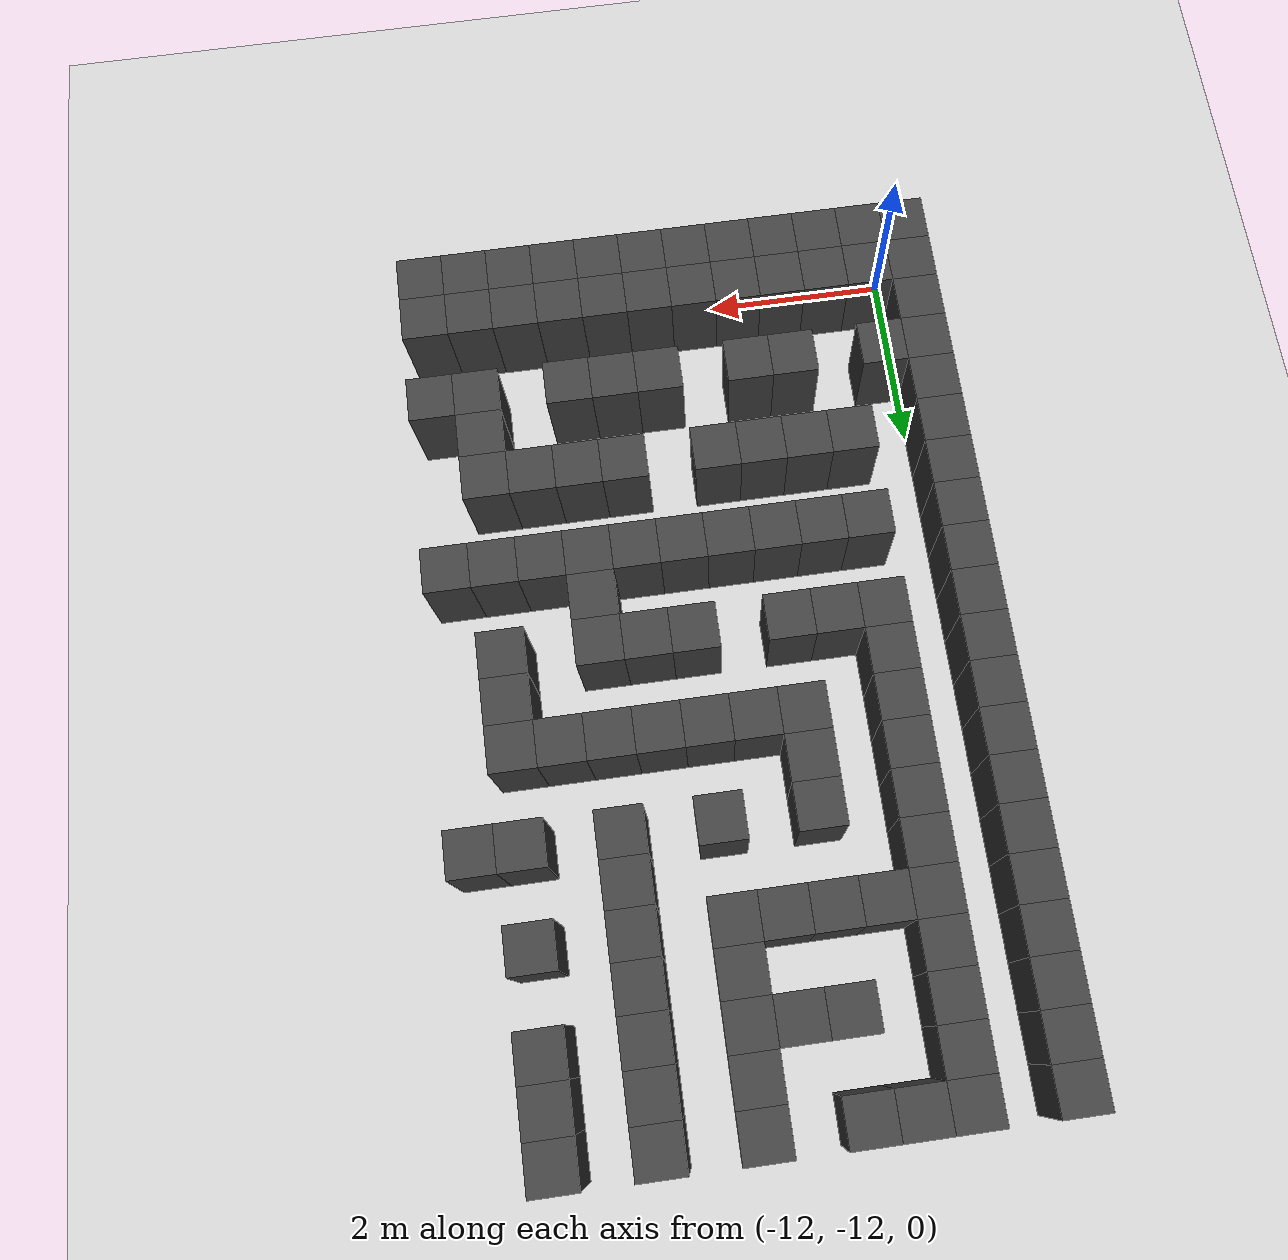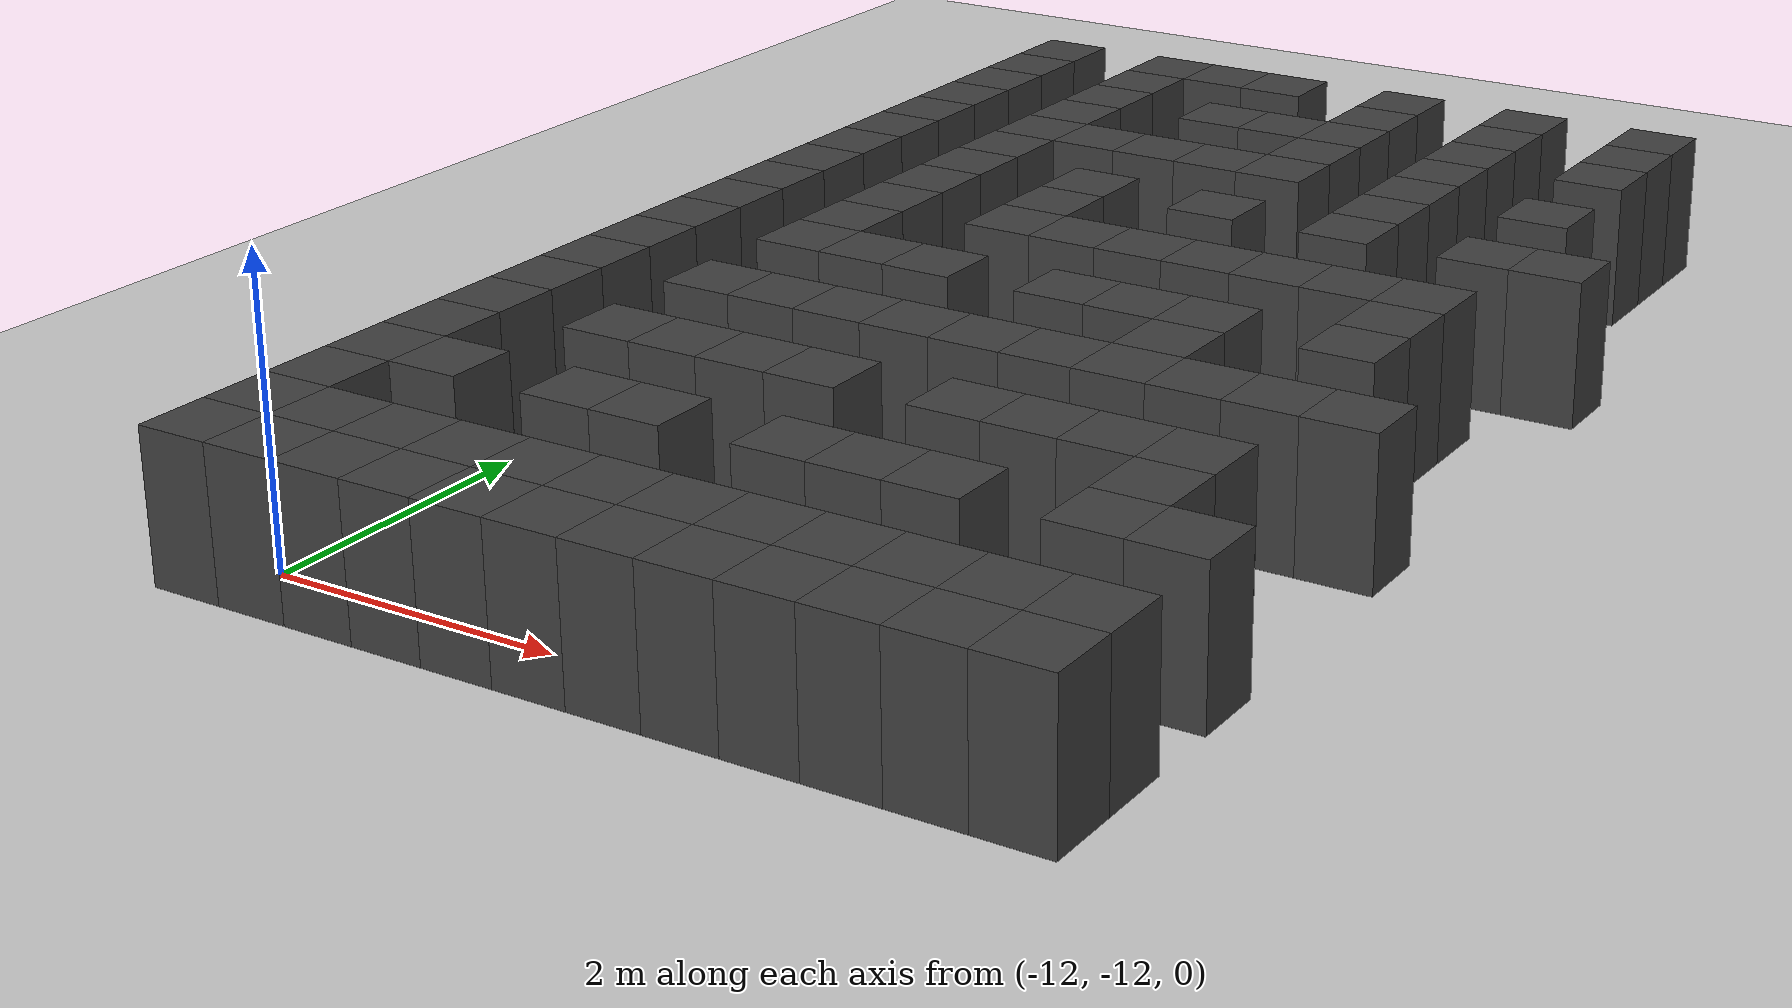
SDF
<sdf version="1.7">
 <world name="map_16271">
  <model name="ground_plane">
   <static>true</static>
   <link name="link">
    <collision name="collision">
     <geometry><plane><normal>0 0 1</normal><size>200 200</size></plane></geometry>
    </collision>
    <visual name="visual">
     <geometry><plane><normal>0 0 1</normal><size>200 200</size></plane></geometry>
     <material><ambient>0.8 0.8 0.8 1</ambient><diffuse>0.8 0.8 0.8 1</diffuse></material>
    </visual>
   </link>
  </model>
  <model name="maze_environment">
   <static>true</static>
   <link name="wall_720">
    <pose>-12.250 -2.750 0.500 0 0 0</pose>
    <collision name="col"><geometry><box><size>0.5 0.5 1.0</size></box></geometry></collision>
    <visual name="vis">
     <geometry><box><size>0.5 0.5 1.0</size></box></geometry>
     <material><ambient>0.15 0.15 0.15 1</ambient><diffuse>0.25 0.25 0.25 1</diffuse></material>
    </visual>
   </link>
   <link name="wall_721">
    <pose>-11.250 -2.750 0.500 0 0 0</pose>
    <collision name="col"><geometry><box><size>0.5 0.5 1.0</size></box></geometry></collision>
    <visual name="vis">
     <geometry><box><size>0.5 0.5 1.0</size></box></geometry>
     <material><ambient>0.15 0.15 0.15 1</ambient><diffuse>0.25 0.25 0.25 1</diffuse></material>
    </visual>
   </link>
   <link name="wall_722">
    <pose>-10.750 -2.750 0.500 0 0 0</pose>
    <collision name="col"><geometry><box><size>0.5 0.5 1.0</size></box></geometry></collision>
    <visual name="vis">
     <geometry><box><size>0.5 0.5 1.0</size></box></geometry>
     <material><ambient>0.15 0.15 0.15 1</ambient><diffuse>0.25 0.25 0.25 1</diffuse></material>
    </visual>
   </link>
   <link name="wall_723">
    <pose>-10.250 -2.750 0.500 0 0 0</pose>
    <collision name="col"><geometry><box><size>0.5 0.5 1.0</size></box></geometry></collision>
    <visual name="vis">
     <geometry><box><size>0.5 0.5 1.0</size></box></geometry>
     <material><ambient>0.15 0.15 0.15 1</ambient><diffuse>0.25 0.25 0.25 1</diffuse></material>
    </visual>
   </link>
   <link name="wall_724">
    <pose>-9.250 -2.750 0.500 0 0 0</pose>
    <collision name="col"><geometry><box><size>0.5 0.5 1.0</size></box></geometry></collision>
    <visual name="vis">
     <geometry><box><size>0.5 0.5 1.0</size></box></geometry>
     <material><ambient>0.15 0.15 0.15 1</ambient><diffuse>0.25 0.25 0.25 1</diffuse></material>
    </visual>
   </link>
   <link name="wall_725">
    <pose>-8.250 -2.750 0.500 0 0 0</pose>
    <collision name="col"><geometry><box><size>0.5 0.5 1.0</size></box></geometry></collision>
    <visual name="vis">
     <geometry><box><size>0.5 0.5 1.0</size></box></geometry>
     <material><ambient>0.15 0.15 0.15 1</ambient><diffuse>0.25 0.25 0.25 1</diffuse></material>
    </visual>
   </link>
   <link name="wall_726">
    <pose>-7.250 -2.750 0.500 0 0 0</pose>
    <collision name="col"><geometry><box><size>0.5 0.5 1.0</size></box></geometry></collision>
    <visual name="vis">
     <geometry><box><size>0.5 0.5 1.0</size></box></geometry>
     <material><ambient>0.15 0.15 0.15 1</ambient><diffuse>0.25 0.25 0.25 1</diffuse></material>
    </visual>
   </link>
   <link name="wall_752">
    <pose>-12.250 -3.250 0.500 0 0 0</pose>
    <collision name="col"><geometry><box><size>0.5 0.5 1.0</size></box></geometry></collision>
    <visual name="vis">
     <geometry><box><size>0.5 0.5 1.0</size></box></geometry>
     <material><ambient>0.15 0.15 0.15 1</ambient><diffuse>0.25 0.25 0.25 1</diffuse></material>
    </visual>
   </link>
   <link name="wall_753">
    <pose>-11.250 -3.250 0.500 0 0 0</pose>
    <collision name="col"><geometry><box><size>0.5 0.5 1.0</size></box></geometry></collision>
    <visual name="vis">
     <geometry><box><size>0.5 0.5 1.0</size></box></geometry>
     <material><ambient>0.15 0.15 0.15 1</ambient><diffuse>0.25 0.25 0.25 1</diffuse></material>
    </visual>
   </link>
   <link name="wall_754">
    <pose>-9.250 -3.250 0.500 0 0 0</pose>
    <collision name="col"><geometry><box><size>0.5 0.5 1.0</size></box></geometry></collision>
    <visual name="vis">
     <geometry><box><size>0.5 0.5 1.0</size></box></geometry>
     <material><ambient>0.15 0.15 0.15 1</ambient><diffuse>0.25 0.25 0.25 1</diffuse></material>
    </visual>
   </link>
   <link name="wall_755">
    <pose>-8.250 -3.250 0.500 0 0 0</pose>
    <collision name="col"><geometry><box><size>0.5 0.5 1.0</size></box></geometry></collision>
    <visual name="vis">
     <geometry><box><size>0.5 0.5 1.0</size></box></geometry>
     <material><ambient>0.15 0.15 0.15 1</ambient><diffuse>0.25 0.25 0.25 1</diffuse></material>
    </visual>
   </link>
   <link name="wall_756">
    <pose>-7.250 -3.250 0.500 0 0 0</pose>
    <collision name="col"><geometry><box><size>0.5 0.5 1.0</size></box></geometry></collision>
    <visual name="vis">
     <geometry><box><size>0.5 0.5 1.0</size></box></geometry>
     <material><ambient>0.15 0.15 0.15 1</ambient><diffuse>0.25 0.25 0.25 1</diffuse></material>
    </visual>
   </link>
   <link name="wall_763">
    <pose>-12.250 -3.750 0.500 0 0 0</pose>
    <collision name="col"><geometry><box><size>0.5 0.5 1.0</size></box></geometry></collision>
    <visual name="vis">
     <geometry><box><size>0.5 0.5 1.0</size></box></geometry>
     <material><ambient>0.15 0.15 0.15 1</ambient><diffuse>0.25 0.25 0.25 1</diffuse></material>
    </visual>
   </link>
   <link name="wall_764">
    <pose>-11.250 -3.750 0.500 0 0 0</pose>
    <collision name="col"><geometry><box><size>0.5 0.5 1.0</size></box></geometry></collision>
    <visual name="vis">
     <geometry><box><size>0.5 0.5 1.0</size></box></geometry>
     <material><ambient>0.15 0.15 0.15 1</ambient><diffuse>0.25 0.25 0.25 1</diffuse></material>
    </visual>
   </link>
   <link name="wall_765">
    <pose>-10.250 -3.750 0.500 0 0 0</pose>
    <collision name="col"><geometry><box><size>0.5 0.5 1.0</size></box></geometry></collision>
    <visual name="vis">
     <geometry><box><size>0.5 0.5 1.0</size></box></geometry>
     <material><ambient>0.15 0.15 0.15 1</ambient><diffuse>0.25 0.25 0.25 1</diffuse></material>
    </visual>
   </link>
   <link name="wall_766">
    <pose>-9.750 -3.750 0.500 0 0 0</pose>
    <collision name="col"><geometry><box><size>0.5 0.5 1.0</size></box></geometry></collision>
    <visual name="vis">
     <geometry><box><size>0.5 0.5 1.0</size></box></geometry>
     <material><ambient>0.15 0.15 0.15 1</ambient><diffuse>0.25 0.25 0.25 1</diffuse></material>
    </visual>
   </link>
   <link name="wall_767">
    <pose>-9.250 -3.750 0.500 0 0 0</pose>
    <collision name="col"><geometry><box><size>0.5 0.5 1.0</size></box></geometry></collision>
    <visual name="vis">
     <geometry><box><size>0.5 0.5 1.0</size></box></geometry>
     <material><ambient>0.15 0.15 0.15 1</ambient><diffuse>0.25 0.25 0.25 1</diffuse></material>
    </visual>
   </link>
   <link name="wall_768">
    <pose>-8.250 -3.750 0.500 0 0 0</pose>
    <collision name="col"><geometry><box><size>0.5 0.5 1.0</size></box></geometry></collision>
    <visual name="vis">
     <geometry><box><size>0.5 0.5 1.0</size></box></geometry>
     <material><ambient>0.15 0.15 0.15 1</ambient><diffuse>0.25 0.25 0.25 1</diffuse></material>
    </visual>
   </link>
   <link name="wall_769">
    <pose>-7.250 -3.750 0.500 0 0 0</pose>
    <collision name="col"><geometry><box><size>0.5 0.5 1.0</size></box></geometry></collision>
    <visual name="vis">
     <geometry><box><size>0.5 0.5 1.0</size></box></geometry>
     <material><ambient>0.15 0.15 0.15 1</ambient><diffuse>0.25 0.25 0.25 1</diffuse></material>
    </visual>
   </link>
   <link name="wall_797">
    <pose>-12.250 -4.250 0.500 0 0 0</pose>
    <collision name="col"><geometry><box><size>0.5 0.5 1.0</size></box></geometry></collision>
    <visual name="vis">
     <geometry><box><size>0.5 0.5 1.0</size></box></geometry>
     <material><ambient>0.15 0.15 0.15 1</ambient><diffuse>0.25 0.25 0.25 1</diffuse></material>
    </visual>
   </link>
   <link name="wall_798">
    <pose>-11.250 -4.250 0.500 0 0 0</pose>
    <collision name="col"><geometry><box><size>0.5 0.5 1.0</size></box></geometry></collision>
    <visual name="vis">
     <geometry><box><size>0.5 0.5 1.0</size></box></geometry>
     <material><ambient>0.15 0.15 0.15 1</ambient><diffuse>0.25 0.25 0.25 1</diffuse></material>
    </visual>
   </link>
   <link name="wall_799">
    <pose>-9.250 -4.250 0.500 0 0 0</pose>
    <collision name="col"><geometry><box><size>0.5 0.5 1.0</size></box></geometry></collision>
    <visual name="vis">
     <geometry><box><size>0.5 0.5 1.0</size></box></geometry>
     <material><ambient>0.15 0.15 0.15 1</ambient><diffuse>0.25 0.25 0.25 1</diffuse></material>
    </visual>
   </link>
   <link name="wall_800">
    <pose>-8.250 -4.250 0.500 0 0 0</pose>
    <collision name="col"><geometry><box><size>0.5 0.5 1.0</size></box></geometry></collision>
    <visual name="vis">
     <geometry><box><size>0.5 0.5 1.0</size></box></geometry>
     <material><ambient>0.15 0.15 0.15 1</ambient><diffuse>0.25 0.25 0.25 1</diffuse></material>
    </visual>
   </link>
   <link name="wall_811">
    <pose>-12.250 -4.750 0.500 0 0 0</pose>
    <collision name="col"><geometry><box><size>0.5 0.5 1.0</size></box></geometry></collision>
    <visual name="vis">
     <geometry><box><size>0.5 0.5 1.0</size></box></geometry>
     <material><ambient>0.15 0.15 0.15 1</ambient><diffuse>0.25 0.25 0.25 1</diffuse></material>
    </visual>
   </link>
   <link name="wall_812">
    <pose>-11.250 -4.750 0.500 0 0 0</pose>
    <collision name="col"><geometry><box><size>0.5 0.5 1.0</size></box></geometry></collision>
    <visual name="vis">
     <geometry><box><size>0.5 0.5 1.0</size></box></geometry>
     <material><ambient>0.15 0.15 0.15 1</ambient><diffuse>0.25 0.25 0.25 1</diffuse></material>
    </visual>
   </link>
   <link name="wall_813">
    <pose>-10.750 -4.750 0.500 0 0 0</pose>
    <collision name="col"><geometry><box><size>0.5 0.5 1.0</size></box></geometry></collision>
    <visual name="vis">
     <geometry><box><size>0.5 0.5 1.0</size></box></geometry>
     <material><ambient>0.15 0.15 0.15 1</ambient><diffuse>0.25 0.25 0.25 1</diffuse></material>
    </visual>
   </link>
   <link name="wall_814">
    <pose>-10.250 -4.750 0.500 0 0 0</pose>
    <collision name="col"><geometry><box><size>0.5 0.5 1.0</size></box></geometry></collision>
    <visual name="vis">
     <geometry><box><size>0.5 0.5 1.0</size></box></geometry>
     <material><ambient>0.15 0.15 0.15 1</ambient><diffuse>0.25 0.25 0.25 1</diffuse></material>
    </visual>
   </link>
   <link name="wall_815">
    <pose>-9.750 -4.750 0.500 0 0 0</pose>
    <collision name="col"><geometry><box><size>0.5 0.5 1.0</size></box></geometry></collision>
    <visual name="vis">
     <geometry><box><size>0.5 0.5 1.0</size></box></geometry>
     <material><ambient>0.15 0.15 0.15 1</ambient><diffuse>0.25 0.25 0.25 1</diffuse></material>
    </visual>
   </link>
   <link name="wall_816">
    <pose>-9.250 -4.750 0.500 0 0 0</pose>
    <collision name="col"><geometry><box><size>0.5 0.5 1.0</size></box></geometry></collision>
    <visual name="vis">
     <geometry><box><size>0.5 0.5 1.0</size></box></geometry>
     <material><ambient>0.15 0.15 0.15 1</ambient><diffuse>0.25 0.25 0.25 1</diffuse></material>
    </visual>
   </link>
   <link name="wall_817">
    <pose>-8.250 -4.750 0.500 0 0 0</pose>
    <collision name="col"><geometry><box><size>0.5 0.5 1.0</size></box></geometry></collision>
    <visual name="vis">
     <geometry><box><size>0.5 0.5 1.0</size></box></geometry>
     <material><ambient>0.15 0.15 0.15 1</ambient><diffuse>0.25 0.25 0.25 1</diffuse></material>
    </visual>
   </link>
   <link name="wall_818">
    <pose>-7.250 -4.750 0.500 0 0 0</pose>
    <collision name="col"><geometry><box><size>0.5 0.5 1.0</size></box></geometry></collision>
    <visual name="vis">
     <geometry><box><size>0.5 0.5 1.0</size></box></geometry>
     <material><ambient>0.15 0.15 0.15 1</ambient><diffuse>0.25 0.25 0.25 1</diffuse></material>
    </visual>
   </link>
   <link name="wall_846">
    <pose>-12.250 -5.250 0.500 0 0 0</pose>
    <collision name="col"><geometry><box><size>0.5 0.5 1.0</size></box></geometry></collision>
    <visual name="vis">
     <geometry><box><size>0.5 0.5 1.0</size></box></geometry>
     <material><ambient>0.15 0.15 0.15 1</ambient><diffuse>0.25 0.25 0.25 1</diffuse></material>
    </visual>
   </link>
   <link name="wall_847">
    <pose>-11.250 -5.250 0.500 0 0 0</pose>
    <collision name="col"><geometry><box><size>0.5 0.5 1.0</size></box></geometry></collision>
    <visual name="vis">
     <geometry><box><size>0.5 0.5 1.0</size></box></geometry>
     <material><ambient>0.15 0.15 0.15 1</ambient><diffuse>0.25 0.25 0.25 1</diffuse></material>
    </visual>
   </link>
   <link name="wall_848">
    <pose>-8.250 -5.250 0.500 0 0 0</pose>
    <collision name="col"><geometry><box><size>0.5 0.5 1.0</size></box></geometry></collision>
    <visual name="vis">
     <geometry><box><size>0.5 0.5 1.0</size></box></geometry>
     <material><ambient>0.15 0.15 0.15 1</ambient><diffuse>0.25 0.25 0.25 1</diffuse></material>
    </visual>
   </link>
   <link name="wall_861">
    <pose>-12.250 -5.750 0.500 0 0 0</pose>
    <collision name="col"><geometry><box><size>0.5 0.5 1.0</size></box></geometry></collision>
    <visual name="vis">
     <geometry><box><size>0.5 0.5 1.0</size></box></geometry>
     <material><ambient>0.15 0.15 0.15 1</ambient><diffuse>0.25 0.25 0.25 1</diffuse></material>
    </visual>
   </link>
   <link name="wall_862">
    <pose>-11.250 -5.750 0.500 0 0 0</pose>
    <collision name="col"><geometry><box><size>0.5 0.5 1.0</size></box></geometry></collision>
    <visual name="vis">
     <geometry><box><size>0.5 0.5 1.0</size></box></geometry>
     <material><ambient>0.15 0.15 0.15 1</ambient><diffuse>0.25 0.25 0.25 1</diffuse></material>
    </visual>
   </link>
   <link name="wall_863">
    <pose>-10.250 -5.750 0.500 0 0 0</pose>
    <collision name="col"><geometry><box><size>0.5 0.5 1.0</size></box></geometry></collision>
    <visual name="vis">
     <geometry><box><size>0.5 0.5 1.0</size></box></geometry>
     <material><ambient>0.15 0.15 0.15 1</ambient><diffuse>0.25 0.25 0.25 1</diffuse></material>
    </visual>
   </link>
   <link name="wall_864">
    <pose>-9.250 -5.750 0.500 0 0 0</pose>
    <collision name="col"><geometry><box><size>0.5 0.5 1.0</size></box></geometry></collision>
    <visual name="vis">
     <geometry><box><size>0.5 0.5 1.0</size></box></geometry>
     <material><ambient>0.15 0.15 0.15 1</ambient><diffuse>0.25 0.25 0.25 1</diffuse></material>
    </visual>
   </link>
   <link name="wall_865">
    <pose>-8.250 -5.750 0.500 0 0 0</pose>
    <collision name="col"><geometry><box><size>0.5 0.5 1.0</size></box></geometry></collision>
    <visual name="vis">
     <geometry><box><size>0.5 0.5 1.0</size></box></geometry>
     <material><ambient>0.15 0.15 0.15 1</ambient><diffuse>0.25 0.25 0.25 1</diffuse></material>
    </visual>
   </link>
   <link name="wall_866">
    <pose>-7.250 -5.750 0.500 0 0 0</pose>
    <collision name="col"><geometry><box><size>0.5 0.5 1.0</size></box></geometry></collision>
    <visual name="vis">
     <geometry><box><size>0.5 0.5 1.0</size></box></geometry>
     <material><ambient>0.15 0.15 0.15 1</ambient><diffuse>0.25 0.25 0.25 1</diffuse></material>
    </visual>
   </link>
   <link name="wall_867">
    <pose>-6.750 -5.750 0.500 0 0 0</pose>
    <collision name="col"><geometry><box><size>0.5 0.5 1.0</size></box></geometry></collision>
    <visual name="vis">
     <geometry><box><size>0.5 0.5 1.0</size></box></geometry>
     <material><ambient>0.15 0.15 0.15 1</ambient><diffuse>0.25 0.25 0.25 1</diffuse></material>
    </visual>
   </link>
   <link name="wall_893">
    <pose>-12.250 -6.250 0.500 0 0 0</pose>
    <collision name="col"><geometry><box><size>0.5 0.5 1.0</size></box></geometry></collision>
    <visual name="vis">
     <geometry><box><size>0.5 0.5 1.0</size></box></geometry>
     <material><ambient>0.15 0.15 0.15 1</ambient><diffuse>0.25 0.25 0.25 1</diffuse></material>
    </visual>
   </link>
   <link name="wall_894">
    <pose>-11.250 -6.250 0.500 0 0 0</pose>
    <collision name="col"><geometry><box><size>0.5 0.5 1.0</size></box></geometry></collision>
    <visual name="vis">
     <geometry><box><size>0.5 0.5 1.0</size></box></geometry>
     <material><ambient>0.15 0.15 0.15 1</ambient><diffuse>0.25 0.25 0.25 1</diffuse></material>
    </visual>
   </link>
   <link name="wall_895">
    <pose>-10.250 -6.250 0.500 0 0 0</pose>
    <collision name="col"><geometry><box><size>0.5 0.5 1.0</size></box></geometry></collision>
    <visual name="vis">
     <geometry><box><size>0.5 0.5 1.0</size></box></geometry>
     <material><ambient>0.15 0.15 0.15 1</ambient><diffuse>0.25 0.25 0.25 1</diffuse></material>
    </visual>
   </link>
   <link name="wall_908">
    <pose>-12.250 -6.750 0.500 0 0 0</pose>
    <collision name="col"><geometry><box><size>0.5 0.5 1.0</size></box></geometry></collision>
    <visual name="vis">
     <geometry><box><size>0.5 0.5 1.0</size></box></geometry>
     <material><ambient>0.15 0.15 0.15 1</ambient><diffuse>0.25 0.25 0.25 1</diffuse></material>
    </visual>
   </link>
   <link name="wall_909">
    <pose>-11.250 -6.750 0.500 0 0 0</pose>
    <collision name="col"><geometry><box><size>0.5 0.5 1.0</size></box></geometry></collision>
    <visual name="vis">
     <geometry><box><size>0.5 0.5 1.0</size></box></geometry>
     <material><ambient>0.15 0.15 0.15 1</ambient><diffuse>0.25 0.25 0.25 1</diffuse></material>
    </visual>
   </link>
   <link name="wall_910">
    <pose>-10.250 -6.750 0.500 0 0 0</pose>
    <collision name="col"><geometry><box><size>0.5 0.5 1.0</size></box></geometry></collision>
    <visual name="vis">
     <geometry><box><size>0.5 0.5 1.0</size></box></geometry>
     <material><ambient>0.15 0.15 0.15 1</ambient><diffuse>0.25 0.25 0.25 1</diffuse></material>
    </visual>
   </link>
   <link name="wall_911">
    <pose>-9.750 -6.750 0.500 0 0 0</pose>
    <collision name="col"><geometry><box><size>0.5 0.5 1.0</size></box></geometry></collision>
    <visual name="vis">
     <geometry><box><size>0.5 0.5 1.0</size></box></geometry>
     <material><ambient>0.15 0.15 0.15 1</ambient><diffuse>0.25 0.25 0.25 1</diffuse></material>
    </visual>
   </link>
   <link name="wall_912">
    <pose>-9.250 -6.750 0.500 0 0 0</pose>
    <collision name="col"><geometry><box><size>0.5 0.5 1.0</size></box></geometry></collision>
    <visual name="vis">
     <geometry><box><size>0.5 0.5 1.0</size></box></geometry>
     <material><ambient>0.15 0.15 0.15 1</ambient><diffuse>0.25 0.25 0.25 1</diffuse></material>
    </visual>
   </link>
   <link name="wall_913">
    <pose>-8.750 -6.750 0.500 0 0 0</pose>
    <collision name="col"><geometry><box><size>0.5 0.5 1.0</size></box></geometry></collision>
    <visual name="vis">
     <geometry><box><size>0.5 0.5 1.0</size></box></geometry>
     <material><ambient>0.15 0.15 0.15 1</ambient><diffuse>0.25 0.25 0.25 1</diffuse></material>
    </visual>
   </link>
   <link name="wall_914">
    <pose>-8.250 -6.750 0.500 0 0 0</pose>
    <collision name="col"><geometry><box><size>0.5 0.5 1.0</size></box></geometry></collision>
    <visual name="vis">
     <geometry><box><size>0.5 0.5 1.0</size></box></geometry>
     <material><ambient>0.15 0.15 0.15 1</ambient><diffuse>0.25 0.25 0.25 1</diffuse></material>
    </visual>
   </link>
   <link name="wall_915">
    <pose>-7.750 -6.750 0.500 0 0 0</pose>
    <collision name="col"><geometry><box><size>0.5 0.5 1.0</size></box></geometry></collision>
    <visual name="vis">
     <geometry><box><size>0.5 0.5 1.0</size></box></geometry>
     <material><ambient>0.15 0.15 0.15 1</ambient><diffuse>0.25 0.25 0.25 1</diffuse></material>
    </visual>
   </link>
   <link name="wall_916">
    <pose>-7.250 -6.750 0.500 0 0 0</pose>
    <collision name="col"><geometry><box><size>0.5 0.5 1.0</size></box></geometry></collision>
    <visual name="vis">
     <geometry><box><size>0.5 0.5 1.0</size></box></geometry>
     <material><ambient>0.15 0.15 0.15 1</ambient><diffuse>0.25 0.25 0.25 1</diffuse></material>
    </visual>
   </link>
   <link name="wall_942">
    <pose>-12.250 -7.250 0.500 0 0 0</pose>
    <collision name="col"><geometry><box><size>0.5 0.5 1.0</size></box></geometry></collision>
    <visual name="vis">
     <geometry><box><size>0.5 0.5 1.0</size></box></geometry>
     <material><ambient>0.15 0.15 0.15 1</ambient><diffuse>0.25 0.25 0.25 1</diffuse></material>
    </visual>
   </link>
   <link name="wall_943">
    <pose>-11.250 -7.250 0.500 0 0 0</pose>
    <collision name="col"><geometry><box><size>0.5 0.5 1.0</size></box></geometry></collision>
    <visual name="vis">
     <geometry><box><size>0.5 0.5 1.0</size></box></geometry>
     <material><ambient>0.15 0.15 0.15 1</ambient><diffuse>0.25 0.25 0.25 1</diffuse></material>
    </visual>
   </link>
   <link name="wall_944">
    <pose>-7.250 -7.250 0.500 0 0 0</pose>
    <collision name="col"><geometry><box><size>0.5 0.5 1.0</size></box></geometry></collision>
    <visual name="vis">
     <geometry><box><size>0.5 0.5 1.0</size></box></geometry>
     <material><ambient>0.15 0.15 0.15 1</ambient><diffuse>0.25 0.25 0.25 1</diffuse></material>
    </visual>
   </link>
   <link name="wall_959">
    <pose>-12.250 -7.750 0.500 0 0 0</pose>
    <collision name="col"><geometry><box><size>0.5 0.5 1.0</size></box></geometry></collision>
    <visual name="vis">
     <geometry><box><size>0.5 0.5 1.0</size></box></geometry>
     <material><ambient>0.15 0.15 0.15 1</ambient><diffuse>0.25 0.25 0.25 1</diffuse></material>
    </visual>
   </link>
   <link name="wall_960">
    <pose>-11.250 -7.750 0.500 0 0 0</pose>
    <collision name="col"><geometry><box><size>0.5 0.5 1.0</size></box></geometry></collision>
    <visual name="vis">
     <geometry><box><size>0.5 0.5 1.0</size></box></geometry>
     <material><ambient>0.15 0.15 0.15 1</ambient><diffuse>0.25 0.25 0.25 1</diffuse></material>
    </visual>
   </link>
   <link name="wall_961">
    <pose>-10.750 -7.750 0.500 0 0 0</pose>
    <collision name="col"><geometry><box><size>0.5 0.5 1.0</size></box></geometry></collision>
    <visual name="vis">
     <geometry><box><size>0.5 0.5 1.0</size></box></geometry>
     <material><ambient>0.15 0.15 0.15 1</ambient><diffuse>0.25 0.25 0.25 1</diffuse></material>
    </visual>
   </link>
   <link name="wall_962">
    <pose>-10.250 -7.750 0.500 0 0 0</pose>
    <collision name="col"><geometry><box><size>0.5 0.5 1.0</size></box></geometry></collision>
    <visual name="vis">
     <geometry><box><size>0.5 0.5 1.0</size></box></geometry>
     <material><ambient>0.15 0.15 0.15 1</ambient><diffuse>0.25 0.25 0.25 1</diffuse></material>
    </visual>
   </link>
   <link name="wall_963">
    <pose>-9.250 -7.750 0.500 0 0 0</pose>
    <collision name="col"><geometry><box><size>0.5 0.5 1.0</size></box></geometry></collision>
    <visual name="vis">
     <geometry><box><size>0.5 0.5 1.0</size></box></geometry>
     <material><ambient>0.15 0.15 0.15 1</ambient><diffuse>0.25 0.25 0.25 1</diffuse></material>
    </visual>
   </link>
   <link name="wall_964">
    <pose>-8.750 -7.750 0.500 0 0 0</pose>
    <collision name="col"><geometry><box><size>0.5 0.5 1.0</size></box></geometry></collision>
    <visual name="vis">
     <geometry><box><size>0.5 0.5 1.0</size></box></geometry>
     <material><ambient>0.15 0.15 0.15 1</ambient><diffuse>0.25 0.25 0.25 1</diffuse></material>
    </visual>
   </link>
   <link name="wall_965">
    <pose>-8.250 -7.750 0.500 0 0 0</pose>
    <collision name="col"><geometry><box><size>0.5 0.5 1.0</size></box></geometry></collision>
    <visual name="vis">
     <geometry><box><size>0.5 0.5 1.0</size></box></geometry>
     <material><ambient>0.15 0.15 0.15 1</ambient><diffuse>0.25 0.25 0.25 1</diffuse></material>
    </visual>
   </link>
   <link name="wall_966">
    <pose>-7.250 -7.750 0.500 0 0 0</pose>
    <collision name="col"><geometry><box><size>0.5 0.5 1.0</size></box></geometry></collision>
    <visual name="vis">
     <geometry><box><size>0.5 0.5 1.0</size></box></geometry>
     <material><ambient>0.15 0.15 0.15 1</ambient><diffuse>0.25 0.25 0.25 1</diffuse></material>
    </visual>
   </link>
   <link name="wall_991">
    <pose>-12.250 -8.250 0.500 0 0 0</pose>
    <collision name="col"><geometry><box><size>0.5 0.5 1.0</size></box></geometry></collision>
    <visual name="vis">
     <geometry><box><size>0.5 0.5 1.0</size></box></geometry>
     <material><ambient>0.15 0.15 0.15 1</ambient><diffuse>0.25 0.25 0.25 1</diffuse></material>
    </visual>
   </link>
   <link name="wall_992">
    <pose>-8.250 -8.250 0.500 0 0 0</pose>
    <collision name="col"><geometry><box><size>0.5 0.5 1.0</size></box></geometry></collision>
    <visual name="vis">
     <geometry><box><size>0.5 0.5 1.0</size></box></geometry>
     <material><ambient>0.15 0.15 0.15 1</ambient><diffuse>0.25 0.25 0.25 1</diffuse></material>
    </visual>
   </link>
   <link name="wall_1006">
    <pose>-12.250 -8.750 0.500 0 0 0</pose>
    <collision name="col"><geometry><box><size>0.5 0.5 1.0</size></box></geometry></collision>
    <visual name="vis">
     <geometry><box><size>0.5 0.5 1.0</size></box></geometry>
     <material><ambient>0.15 0.15 0.15 1</ambient><diffuse>0.25 0.25 0.25 1</diffuse></material>
    </visual>
   </link>
   <link name="wall_1007">
    <pose>-11.250 -8.750 0.500 0 0 0</pose>
    <collision name="col"><geometry><box><size>0.5 0.5 1.0</size></box></geometry></collision>
    <visual name="vis">
     <geometry><box><size>0.5 0.5 1.0</size></box></geometry>
     <material><ambient>0.15 0.15 0.15 1</ambient><diffuse>0.25 0.25 0.25 1</diffuse></material>
    </visual>
   </link>
   <link name="wall_1008">
    <pose>-10.750 -8.750 0.500 0 0 0</pose>
    <collision name="col"><geometry><box><size>0.5 0.5 1.0</size></box></geometry></collision>
    <visual name="vis">
     <geometry><box><size>0.5 0.5 1.0</size></box></geometry>
     <material><ambient>0.15 0.15 0.15 1</ambient><diffuse>0.25 0.25 0.25 1</diffuse></material>
    </visual>
   </link>
   <link name="wall_1009">
    <pose>-10.250 -8.750 0.500 0 0 0</pose>
    <collision name="col"><geometry><box><size>0.5 0.5 1.0</size></box></geometry></collision>
    <visual name="vis">
     <geometry><box><size>0.5 0.5 1.0</size></box></geometry>
     <material><ambient>0.15 0.15 0.15 1</ambient><diffuse>0.25 0.25 0.25 1</diffuse></material>
    </visual>
   </link>
   <link name="wall_1010">
    <pose>-9.750 -8.750 0.500 0 0 0</pose>
    <collision name="col"><geometry><box><size>0.5 0.5 1.0</size></box></geometry></collision>
    <visual name="vis">
     <geometry><box><size>0.5 0.5 1.0</size></box></geometry>
     <material><ambient>0.15 0.15 0.15 1</ambient><diffuse>0.25 0.25 0.25 1</diffuse></material>
    </visual>
   </link>
   <link name="wall_1011">
    <pose>-9.250 -8.750 0.500 0 0 0</pose>
    <collision name="col"><geometry><box><size>0.5 0.5 1.0</size></box></geometry></collision>
    <visual name="vis">
     <geometry><box><size>0.5 0.5 1.0</size></box></geometry>
     <material><ambient>0.15 0.15 0.15 1</ambient><diffuse>0.25 0.25 0.25 1</diffuse></material>
    </visual>
   </link>
   <link name="wall_1012">
    <pose>-8.750 -8.750 0.500 0 0 0</pose>
    <collision name="col"><geometry><box><size>0.5 0.5 1.0</size></box></geometry></collision>
    <visual name="vis">
     <geometry><box><size>0.5 0.5 1.0</size></box></geometry>
     <material><ambient>0.15 0.15 0.15 1</ambient><diffuse>0.25 0.25 0.25 1</diffuse></material>
    </visual>
   </link>
   <link name="wall_1013">
    <pose>-8.250 -8.750 0.500 0 0 0</pose>
    <collision name="col"><geometry><box><size>0.5 0.5 1.0</size></box></geometry></collision>
    <visual name="vis">
     <geometry><box><size>0.5 0.5 1.0</size></box></geometry>
     <material><ambient>0.15 0.15 0.15 1</ambient><diffuse>0.25 0.25 0.25 1</diffuse></material>
    </visual>
   </link>
   <link name="wall_1014">
    <pose>-7.750 -8.750 0.500 0 0 0</pose>
    <collision name="col"><geometry><box><size>0.5 0.5 1.0</size></box></geometry></collision>
    <visual name="vis">
     <geometry><box><size>0.5 0.5 1.0</size></box></geometry>
     <material><ambient>0.15 0.15 0.15 1</ambient><diffuse>0.25 0.25 0.25 1</diffuse></material>
    </visual>
   </link>
   <link name="wall_1015">
    <pose>-7.250 -8.750 0.500 0 0 0</pose>
    <collision name="col"><geometry><box><size>0.5 0.5 1.0</size></box></geometry></collision>
    <visual name="vis">
     <geometry><box><size>0.5 0.5 1.0</size></box></geometry>
     <material><ambient>0.15 0.15 0.15 1</ambient><diffuse>0.25 0.25 0.25 1</diffuse></material>
    </visual>
   </link>
   <link name="wall_1016">
    <pose>-6.750 -8.750 0.500 0 0 0</pose>
    <collision name="col"><geometry><box><size>0.5 0.5 1.0</size></box></geometry></collision>
    <visual name="vis">
     <geometry><box><size>0.5 0.5 1.0</size></box></geometry>
     <material><ambient>0.15 0.15 0.15 1</ambient><diffuse>0.25 0.25 0.25 1</diffuse></material>
    </visual>
   </link>
   <link name="wall_1042">
    <pose>-12.250 -9.250 0.500 0 0 0</pose>
    <collision name="col"><geometry><box><size>0.5 0.5 1.0</size></box></geometry></collision>
    <visual name="vis">
     <geometry><box><size>0.5 0.5 1.0</size></box></geometry>
     <material><ambient>0.15 0.15 0.15 1</ambient><diffuse>0.25 0.25 0.25 1</diffuse></material>
    </visual>
   </link>
   <link name="wall_1053">
    <pose>-12.250 -9.750 0.500 0 0 0</pose>
    <collision name="col"><geometry><box><size>0.5 0.5 1.0</size></box></geometry></collision>
    <visual name="vis">
     <geometry><box><size>0.5 0.5 1.0</size></box></geometry>
     <material><ambient>0.15 0.15 0.15 1</ambient><diffuse>0.25 0.25 0.25 1</diffuse></material>
    </visual>
   </link>
   <link name="wall_1054">
    <pose>-11.250 -9.750 0.500 0 0 0</pose>
    <collision name="col"><geometry><box><size>0.5 0.5 1.0</size></box></geometry></collision>
    <visual name="vis">
     <geometry><box><size>0.5 0.5 1.0</size></box></geometry>
     <material><ambient>0.15 0.15 0.15 1</ambient><diffuse>0.25 0.25 0.25 1</diffuse></material>
    </visual>
   </link>
   <link name="wall_1055">
    <pose>-10.750 -9.750 0.500 0 0 0</pose>
    <collision name="col"><geometry><box><size>0.5 0.5 1.0</size></box></geometry></collision>
    <visual name="vis">
     <geometry><box><size>0.5 0.5 1.0</size></box></geometry>
     <material><ambient>0.15 0.15 0.15 1</ambient><diffuse>0.25 0.25 0.25 1</diffuse></material>
    </visual>
   </link>
   <link name="wall_1056">
    <pose>-10.250 -9.750 0.500 0 0 0</pose>
    <collision name="col"><geometry><box><size>0.5 0.5 1.0</size></box></geometry></collision>
    <visual name="vis">
     <geometry><box><size>0.5 0.5 1.0</size></box></geometry>
     <material><ambient>0.15 0.15 0.15 1</ambient><diffuse>0.25 0.25 0.25 1</diffuse></material>
    </visual>
   </link>
   <link name="wall_1057">
    <pose>-9.750 -9.750 0.500 0 0 0</pose>
    <collision name="col"><geometry><box><size>0.5 0.5 1.0</size></box></geometry></collision>
    <visual name="vis">
     <geometry><box><size>0.5 0.5 1.0</size></box></geometry>
     <material><ambient>0.15 0.15 0.15 1</ambient><diffuse>0.25 0.25 0.25 1</diffuse></material>
    </visual>
   </link>
   <link name="wall_1058">
    <pose>-8.750 -9.750 0.500 0 0 0</pose>
    <collision name="col"><geometry><box><size>0.5 0.5 1.0</size></box></geometry></collision>
    <visual name="vis">
     <geometry><box><size>0.5 0.5 1.0</size></box></geometry>
     <material><ambient>0.15 0.15 0.15 1</ambient><diffuse>0.25 0.25 0.25 1</diffuse></material>
    </visual>
   </link>
   <link name="wall_1059">
    <pose>-8.250 -9.750 0.500 0 0 0</pose>
    <collision name="col"><geometry><box><size>0.5 0.5 1.0</size></box></geometry></collision>
    <visual name="vis">
     <geometry><box><size>0.5 0.5 1.0</size></box></geometry>
     <material><ambient>0.15 0.15 0.15 1</ambient><diffuse>0.25 0.25 0.25 1</diffuse></material>
    </visual>
   </link>
   <link name="wall_1060">
    <pose>-7.750 -9.750 0.500 0 0 0</pose>
    <collision name="col"><geometry><box><size>0.5 0.5 1.0</size></box></geometry></collision>
    <visual name="vis">
     <geometry><box><size>0.5 0.5 1.0</size></box></geometry>
     <material><ambient>0.15 0.15 0.15 1</ambient><diffuse>0.25 0.25 0.25 1</diffuse></material>
    </visual>
   </link>
   <link name="wall_1061">
    <pose>-7.250 -9.750 0.500 0 0 0</pose>
    <collision name="col"><geometry><box><size>0.5 0.5 1.0</size></box></geometry></collision>
    <visual name="vis">
     <geometry><box><size>0.5 0.5 1.0</size></box></geometry>
     <material><ambient>0.15 0.15 0.15 1</ambient><diffuse>0.25 0.25 0.25 1</diffuse></material>
    </visual>
   </link>
   <link name="wall_1087">
    <pose>-12.250 -10.250 0.500 0 0 0</pose>
    <collision name="col"><geometry><box><size>0.5 0.5 1.0</size></box></geometry></collision>
    <visual name="vis">
     <geometry><box><size>0.5 0.5 1.0</size></box></geometry>
     <material><ambient>0.15 0.15 0.15 1</ambient><diffuse>0.25 0.25 0.25 1</diffuse></material>
    </visual>
   </link>
   <link name="wall_1088">
    <pose>-7.250 -10.250 0.500 0 0 0</pose>
    <collision name="col"><geometry><box><size>0.5 0.5 1.0</size></box></geometry></collision>
    <visual name="vis">
     <geometry><box><size>0.5 0.5 1.0</size></box></geometry>
     <material><ambient>0.15 0.15 0.15 1</ambient><diffuse>0.25 0.25 0.25 1</diffuse></material>
    </visual>
   </link>
   <link name="wall_1095">
    <pose>-12.250 -10.750 0.500 0 0 0</pose>
    <collision name="col"><geometry><box><size>0.5 0.5 1.0</size></box></geometry></collision>
    <visual name="vis">
     <geometry><box><size>0.5 0.5 1.0</size></box></geometry>
     <material><ambient>0.15 0.15 0.15 1</ambient><diffuse>0.25 0.25 0.25 1</diffuse></material>
    </visual>
   </link>
   <link name="wall_1096">
    <pose>-11.750 -10.750 0.500 0 0 0</pose>
    <collision name="col"><geometry><box><size>0.5 0.5 1.0</size></box></geometry></collision>
    <visual name="vis">
     <geometry><box><size>0.5 0.5 1.0</size></box></geometry>
     <material><ambient>0.15 0.15 0.15 1</ambient><diffuse>0.25 0.25 0.25 1</diffuse></material>
    </visual>
   </link>
   <link name="wall_1097">
    <pose>-10.750 -10.750 0.500 0 0 0</pose>
    <collision name="col"><geometry><box><size>0.5 0.5 1.0</size></box></geometry></collision>
    <visual name="vis">
     <geometry><box><size>0.5 0.5 1.0</size></box></geometry>
     <material><ambient>0.15 0.15 0.15 1</ambient><diffuse>0.25 0.25 0.25 1</diffuse></material>
    </visual>
   </link>
   <link name="wall_1098">
    <pose>-10.250 -10.750 0.500 0 0 0</pose>
    <collision name="col"><geometry><box><size>0.5 0.5 1.0</size></box></geometry></collision>
    <visual name="vis">
     <geometry><box><size>0.5 0.5 1.0</size></box></geometry>
     <material><ambient>0.15 0.15 0.15 1</ambient><diffuse>0.25 0.25 0.25 1</diffuse></material>
    </visual>
   </link>
   <link name="wall_1099">
    <pose>-9.250 -10.750 0.500 0 0 0</pose>
    <collision name="col"><geometry><box><size>0.5 0.5 1.0</size></box></geometry></collision>
    <visual name="vis">
     <geometry><box><size>0.5 0.5 1.0</size></box></geometry>
     <material><ambient>0.15 0.15 0.15 1</ambient><diffuse>0.25 0.25 0.25 1</diffuse></material>
    </visual>
   </link>
   <link name="wall_1100">
    <pose>-8.750 -10.750 0.500 0 0 0</pose>
    <collision name="col"><geometry><box><size>0.5 0.5 1.0</size></box></geometry></collision>
    <visual name="vis">
     <geometry><box><size>0.5 0.5 1.0</size></box></geometry>
     <material><ambient>0.15 0.15 0.15 1</ambient><diffuse>0.25 0.25 0.25 1</diffuse></material>
    </visual>
   </link>
   <link name="wall_1101">
    <pose>-8.250 -10.750 0.500 0 0 0</pose>
    <collision name="col"><geometry><box><size>0.5 0.5 1.0</size></box></geometry></collision>
    <visual name="vis">
     <geometry><box><size>0.5 0.5 1.0</size></box></geometry>
     <material><ambient>0.15 0.15 0.15 1</ambient><diffuse>0.25 0.25 0.25 1</diffuse></material>
    </visual>
   </link>
   <link name="wall_1102">
    <pose>-7.250 -10.750 0.500 0 0 0</pose>
    <collision name="col"><geometry><box><size>0.5 0.5 1.0</size></box></geometry></collision>
    <visual name="vis">
     <geometry><box><size>0.5 0.5 1.0</size></box></geometry>
     <material><ambient>0.15 0.15 0.15 1</ambient><diffuse>0.25 0.25 0.25 1</diffuse></material>
    </visual>
   </link>
   <link name="wall_1103">
    <pose>-6.750 -10.750 0.500 0 0 0</pose>
    <collision name="col"><geometry><box><size>0.5 0.5 1.0</size></box></geometry></collision>
    <visual name="vis">
     <geometry><box><size>0.5 0.5 1.0</size></box></geometry>
     <material><ambient>0.15 0.15 0.15 1</ambient><diffuse>0.25 0.25 0.25 1</diffuse></material>
    </visual>
   </link>
   <link name="wall_1132">
    <pose>-12.250 -11.250 0.500 0 0 0</pose>
    <collision name="col"><geometry><box><size>0.5 0.5 1.0</size></box></geometry></collision>
    <visual name="vis">
     <geometry><box><size>0.5 0.5 1.0</size></box></geometry>
     <material><ambient>0.15 0.15 0.15 1</ambient><diffuse>0.25 0.25 0.25 1</diffuse></material>
    </visual>
   </link>
   <link name="wall_1135">
    <pose>-12.250 -11.750 0.500 0 0 0</pose>
    <collision name="col"><geometry><box><size>0.5 0.5 1.0</size></box></geometry></collision>
    <visual name="vis">
     <geometry><box><size>0.5 0.5 1.0</size></box></geometry>
     <material><ambient>0.15 0.15 0.15 1</ambient><diffuse>0.25 0.25 0.25 1</diffuse></material>
    </visual>
   </link>
   <link name="wall_1136">
    <pose>-11.750 -11.750 0.500 0 0 0</pose>
    <collision name="col"><geometry><box><size>0.5 0.5 1.0</size></box></geometry></collision>
    <visual name="vis">
     <geometry><box><size>0.5 0.5 1.0</size></box></geometry>
     <material><ambient>0.15 0.15 0.15 1</ambient><diffuse>0.25 0.25 0.25 1</diffuse></material>
    </visual>
   </link>
   <link name="wall_1137">
    <pose>-11.250 -11.750 0.500 0 0 0</pose>
    <collision name="col"><geometry><box><size>0.5 0.5 1.0</size></box></geometry></collision>
    <visual name="vis">
     <geometry><box><size>0.5 0.5 1.0</size></box></geometry>
     <material><ambient>0.15 0.15 0.15 1</ambient><diffuse>0.25 0.25 0.25 1</diffuse></material>
    </visual>
   </link>
   <link name="wall_1138">
    <pose>-10.750 -11.750 0.500 0 0 0</pose>
    <collision name="col"><geometry><box><size>0.5 0.5 1.0</size></box></geometry></collision>
    <visual name="vis">
     <geometry><box><size>0.5 0.5 1.0</size></box></geometry>
     <material><ambient>0.15 0.15 0.15 1</ambient><diffuse>0.25 0.25 0.25 1</diffuse></material>
    </visual>
   </link>
   <link name="wall_1139">
    <pose>-10.250 -11.750 0.500 0 0 0</pose>
    <collision name="col"><geometry><box><size>0.5 0.5 1.0</size></box></geometry></collision>
    <visual name="vis">
     <geometry><box><size>0.5 0.5 1.0</size></box></geometry>
     <material><ambient>0.15 0.15 0.15 1</ambient><diffuse>0.25 0.25 0.25 1</diffuse></material>
    </visual>
   </link>
   <link name="wall_1140">
    <pose>-9.750 -11.750 0.500 0 0 0</pose>
    <collision name="col"><geometry><box><size>0.5 0.5 1.0</size></box></geometry></collision>
    <visual name="vis">
     <geometry><box><size>0.5 0.5 1.0</size></box></geometry>
     <material><ambient>0.15 0.15 0.15 1</ambient><diffuse>0.25 0.25 0.25 1</diffuse></material>
    </visual>
   </link>
   <link name="wall_1141">
    <pose>-9.250 -11.750 0.500 0 0 0</pose>
    <collision name="col"><geometry><box><size>0.5 0.5 1.0</size></box></geometry></collision>
    <visual name="vis">
     <geometry><box><size>0.5 0.5 1.0</size></box></geometry>
     <material><ambient>0.15 0.15 0.15 1</ambient><diffuse>0.25 0.25 0.25 1</diffuse></material>
    </visual>
   </link>
   <link name="wall_1142">
    <pose>-8.750 -11.750 0.500 0 0 0</pose>
    <collision name="col"><geometry><box><size>0.5 0.5 1.0</size></box></geometry></collision>
    <visual name="vis">
     <geometry><box><size>0.5 0.5 1.0</size></box></geometry>
     <material><ambient>0.15 0.15 0.15 1</ambient><diffuse>0.25 0.25 0.25 1</diffuse></material>
    </visual>
   </link>
   <link name="wall_1143">
    <pose>-8.250 -11.750 0.500 0 0 0</pose>
    <collision name="col"><geometry><box><size>0.5 0.5 1.0</size></box></geometry></collision>
    <visual name="vis">
     <geometry><box><size>0.5 0.5 1.0</size></box></geometry>
     <material><ambient>0.15 0.15 0.15 1</ambient><diffuse>0.25 0.25 0.25 1</diffuse></material>
    </visual>
   </link>
   <link name="wall_1144">
    <pose>-7.750 -11.750 0.500 0 0 0</pose>
    <collision name="col"><geometry><box><size>0.5 0.5 1.0</size></box></geometry></collision>
    <visual name="vis">
     <geometry><box><size>0.5 0.5 1.0</size></box></geometry>
     <material><ambient>0.15 0.15 0.15 1</ambient><diffuse>0.25 0.25 0.25 1</diffuse></material>
    </visual>
   </link>
   <link name="wall_1145">
    <pose>-7.250 -11.750 0.500 0 0 0</pose>
    <collision name="col"><geometry><box><size>0.5 0.5 1.0</size></box></geometry></collision>
    <visual name="vis">
     <geometry><box><size>0.5 0.5 1.0</size></box></geometry>
     <material><ambient>0.15 0.15 0.15 1</ambient><diffuse>0.25 0.25 0.25 1</diffuse></material>
    </visual>
   </link>
   <link name="wall_1146">
    <pose>-6.750 -11.750 0.500 0 0 0</pose>
    <collision name="col"><geometry><box><size>0.5 0.5 1.0</size></box></geometry></collision>
    <visual name="vis">
     <geometry><box><size>0.5 0.5 1.0</size></box></geometry>
     <material><ambient>0.15 0.15 0.15 1</ambient><diffuse>0.25 0.25 0.25 1</diffuse></material>
    </visual>
   </link>
   <link name="wall_1183">
    <pose>-12.250 -12.250 0.500 0 0 0</pose>
    <collision name="col"><geometry><box><size>0.5 0.5 1.0</size></box></geometry></collision>
    <visual name="vis">
     <geometry><box><size>0.5 0.5 1.0</size></box></geometry>
     <material><ambient>0.15 0.15 0.15 1</ambient><diffuse>0.25 0.25 0.25 1</diffuse></material>
    </visual>
   </link>
   <link name="wall_1184">
    <pose>-11.750 -12.250 0.500 0 0 0</pose>
    <collision name="col"><geometry><box><size>0.5 0.5 1.0</size></box></geometry></collision>
    <visual name="vis">
     <geometry><box><size>0.5 0.5 1.0</size></box></geometry>
     <material><ambient>0.15 0.15 0.15 1</ambient><diffuse>0.25 0.25 0.25 1</diffuse></material>
    </visual>
   </link>
   <link name="wall_1185">
    <pose>-11.250 -12.250 0.500 0 0 0</pose>
    <collision name="col"><geometry><box><size>0.5 0.5 1.0</size></box></geometry></collision>
    <visual name="vis">
     <geometry><box><size>0.5 0.5 1.0</size></box></geometry>
     <material><ambient>0.15 0.15 0.15 1</ambient><diffuse>0.25 0.25 0.25 1</diffuse></material>
    </visual>
   </link>
   <link name="wall_1186">
    <pose>-10.750 -12.250 0.500 0 0 0</pose>
    <collision name="col"><geometry><box><size>0.5 0.5 1.0</size></box></geometry></collision>
    <visual name="vis">
     <geometry><box><size>0.5 0.5 1.0</size></box></geometry>
     <material><ambient>0.15 0.15 0.15 1</ambient><diffuse>0.25 0.25 0.25 1</diffuse></material>
    </visual>
   </link>
   <link name="wall_1187">
    <pose>-10.250 -12.250 0.500 0 0 0</pose>
    <collision name="col"><geometry><box><size>0.5 0.5 1.0</size></box></geometry></collision>
    <visual name="vis">
     <geometry><box><size>0.5 0.5 1.0</size></box></geometry>
     <material><ambient>0.15 0.15 0.15 1</ambient><diffuse>0.25 0.25 0.25 1</diffuse></material>
    </visual>
   </link>
   <link name="wall_1188">
    <pose>-9.750 -12.250 0.500 0 0 0</pose>
    <collision name="col"><geometry><box><size>0.5 0.5 1.0</size></box></geometry></collision>
    <visual name="vis">
     <geometry><box><size>0.5 0.5 1.0</size></box></geometry>
     <material><ambient>0.15 0.15 0.15 1</ambient><diffuse>0.25 0.25 0.25 1</diffuse></material>
    </visual>
   </link>
   <link name="wall_1189">
    <pose>-9.250 -12.250 0.500 0 0 0</pose>
    <collision name="col"><geometry><box><size>0.5 0.5 1.0</size></box></geometry></collision>
    <visual name="vis">
     <geometry><box><size>0.5 0.5 1.0</size></box></geometry>
     <material><ambient>0.15 0.15 0.15 1</ambient><diffuse>0.25 0.25 0.25 1</diffuse></material>
    </visual>
   </link>
   <link name="wall_1190">
    <pose>-8.750 -12.250 0.500 0 0 0</pose>
    <collision name="col"><geometry><box><size>0.5 0.5 1.0</size></box></geometry></collision>
    <visual name="vis">
     <geometry><box><size>0.5 0.5 1.0</size></box></geometry>
     <material><ambient>0.15 0.15 0.15 1</ambient><diffuse>0.25 0.25 0.25 1</diffuse></material>
    </visual>
   </link>
   <link name="wall_1191">
    <pose>-8.250 -12.250 0.500 0 0 0</pose>
    <collision name="col"><geometry><box><size>0.5 0.5 1.0</size></box></geometry></collision>
    <visual name="vis">
     <geometry><box><size>0.5 0.5 1.0</size></box></geometry>
     <material><ambient>0.15 0.15 0.15 1</ambient><diffuse>0.25 0.25 0.25 1</diffuse></material>
    </visual>
   </link>
   <link name="wall_1192">
    <pose>-7.750 -12.250 0.500 0 0 0</pose>
    <collision name="col"><geometry><box><size>0.5 0.5 1.0</size></box></geometry></collision>
    <visual name="vis">
     <geometry><box><size>0.5 0.5 1.0</size></box></geometry>
     <material><ambient>0.15 0.15 0.15 1</ambient><diffuse>0.25 0.25 0.25 1</diffuse></material>
    </visual>
   </link>
   <link name="wall_1193">
    <pose>-7.250 -12.250 0.500 0 0 0</pose>
    <collision name="col"><geometry><box><size>0.5 0.5 1.0</size></box></geometry></collision>
    <visual name="vis">
     <geometry><box><size>0.5 0.5 1.0</size></box></geometry>
     <material><ambient>0.15 0.15 0.15 1</ambient><diffuse>0.25 0.25 0.25 1</diffuse></material>
    </visual>
   </link>
   <link name="wall_1194">
    <pose>-6.750 -12.250 0.500 0 0 0</pose>
    <collision name="col"><geometry><box><size>0.5 0.5 1.0</size></box></geometry></collision>
    <visual name="vis">
     <geometry><box><size>0.5 0.5 1.0</size></box></geometry>
     <material><ambient>0.15 0.15 0.15 1</ambient><diffuse>0.25 0.25 0.25 1</diffuse></material>
    </visual>
   </link>
  </model>
 </world>
</sdf>
